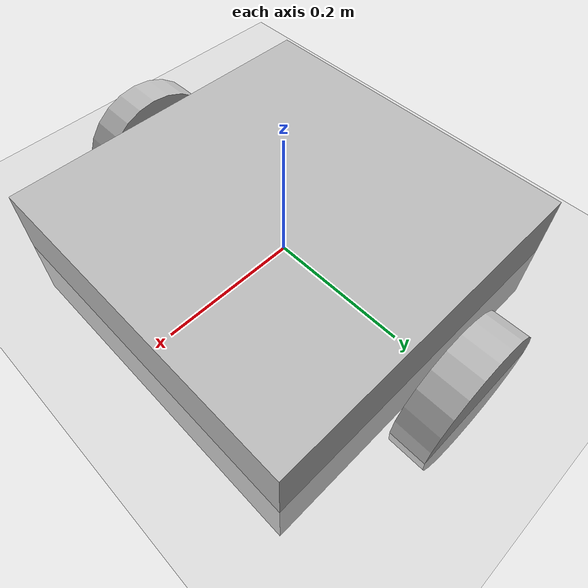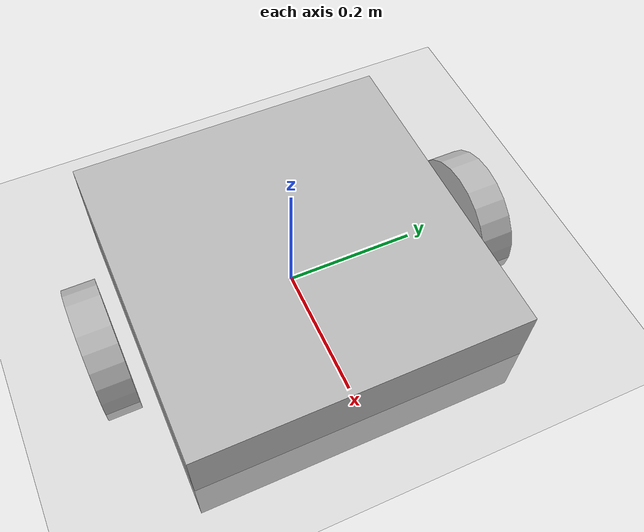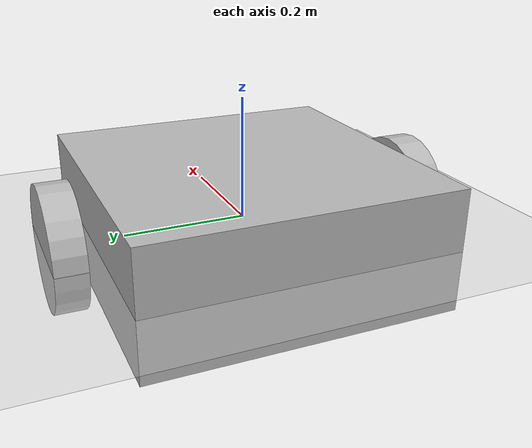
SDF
<?xml version="1.0" ?>
<sdf version="1.6">
  <world name="square_world">

    <!-- Luz -->
    <include>
      <uri>model://sun</uri>
    </include>

    <!-- Chão -->
    <include>
      <uri>model://ground_plane</uri>
    </include>

    <!-- ROBÔ -->
    <model name="square_robot">
	<static>false</static>
	<include>
		<uri>file:///app/simulator/robots/</uri>
	</include>
    </model>

  </world>
</sdf>

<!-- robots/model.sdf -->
<sdf version='1.7'>
  <model name='square_robot'>
    <link name='base_link'>
      <inertial>
        <pose>0 0 0 0 -0 0</pose>
        <mass>10</mass>
        <inertia>
          <ixx>0.4</ixx>
          <ixy>0</ixy>
          <ixz>0</ixz>
          <iyy>0.4</iyy>
          <iyz>0</iyz>
          <izz>0.2</izz>
        </inertia>
      </inertial>
      <collision name='base_link_collision'>
        <pose>0 0 0 0 -0 0</pose>
        <geometry>
          <box>
            <size>0.5 0.5 0.2</size>
          </box>
        </geometry>
      </collision>
      <visual name='base_link_visual'>
        <pose>0 0 0 0 -0 0</pose>
        <geometry>
          <box>
            <size>0.5 0.5 0.2</size>
          </box>
        </geometry>
      </visual>
    </link>
    <joint name='left_wheel_joint' type='revolute'>
      <pose relative_to='base_link'>0 0.3 0 -1.5707 0 0</pose>
      <parent>base_link</parent>
      <child>left_wheel</child>
      <axis>
        <xyz>0 0 1</xyz>
        <limit>
          <lower>-1e+16</lower>
          <upper>1e+16</upper>
        </limit>
        <dynamics>
          <spring_reference>0</spring_reference>
          <spring_stiffness>0</spring_stiffness>
        </dynamics>
      </axis>
    </joint>
    <link name='left_wheel'>
      <pose relative_to='left_wheel_joint'>0 0 0 0 -0 0</pose>
      <inertial>
        <pose>0 0 0 0 -0 0</pose>
        <mass>1</mass>
        <inertia>
          <ixx>0.01</ixx>
          <ixy>0</ixy>
          <ixz>0</ixz>
          <iyy>0.01</iyy>
          <iyz>0</iyz>
          <izz>0.01</izz>
        </inertia>
      </inertial>
      <collision name='left_wheel_collision'>
        <pose>0 0 0 0 -0 0</pose>
        <geometry>
          <cylinder>
            <length>0.05</length>
            <radius>0.1</radius>
          </cylinder>
        </geometry>
      </collision>
      <visual name='left_wheel_visual'>
        <pose>0 0 0 0 -0 0</pose>
        <geometry>
          <cylinder>
            <length>0.05</length>
            <radius>0.1</radius>
          </cylinder>
        </geometry>
      </visual>
    </link>
    <joint name='right_wheel_joint' type='revolute'>
      <pose relative_to='base_link'>0 -0.3 0 -1.5707 0 0</pose>
      <parent>base_link</parent>
      <child>right_wheel</child>
      <axis>
        <xyz>0 0 1</xyz>
        <limit>
          <lower>-1e+16</lower>
          <upper>1e+16</upper>
        </limit>
        <dynamics>
          <spring_reference>0</spring_reference>
          <spring_stiffness>0</spring_stiffness>
        </dynamics>
      </axis>
    </joint>
    <link name='right_wheel'>
      <pose relative_to='right_wheel_joint'>0 0 0 0 -0 0</pose>
      <inertial>
        <pose>0 0 0 0 -0 0</pose>
        <mass>1</mass>
        <inertia>
          <ixx>0.01</ixx>
          <ixy>0</ixy>
          <ixz>0</ixz>
          <iyy>0.01</iyy>
          <iyz>0</iyz>
          <izz>0.01</izz>
        </inertia>
      </inertial>
      <collision name='right_wheel_collision'>
        <pose>0 0 0 0 -0 0</pose>
        <geometry>
          <cylinder>
            <length>0.05</length>
            <radius>0.1</radius>
          </cylinder>
        </geometry>
      </collision>
      <visual name='right_wheel_visual'>
        <pose>0 0 0 0 -0 0</pose>
        <geometry>
          <cylinder>
            <length>0.05</length>
            <radius>0.1</radius>
          </cylinder>
        </geometry>
      </visual>
    </link>
    <static>0</static>
    <plugin name='gazebo_ros2_control' filename='libgazebo_ros2_control.so'>
      <robot_sim_type>gazebo_ros2_control/GazeboSystem</robot_sim_type>
    </plugin>
  </model>
</sdf>
